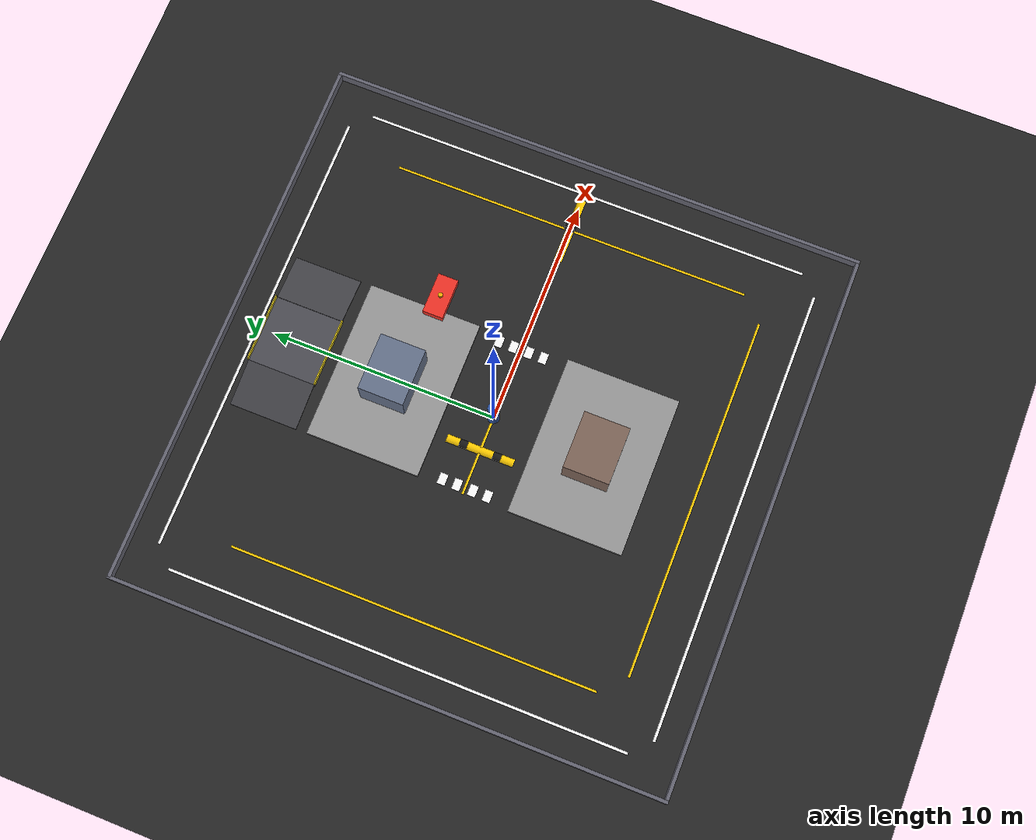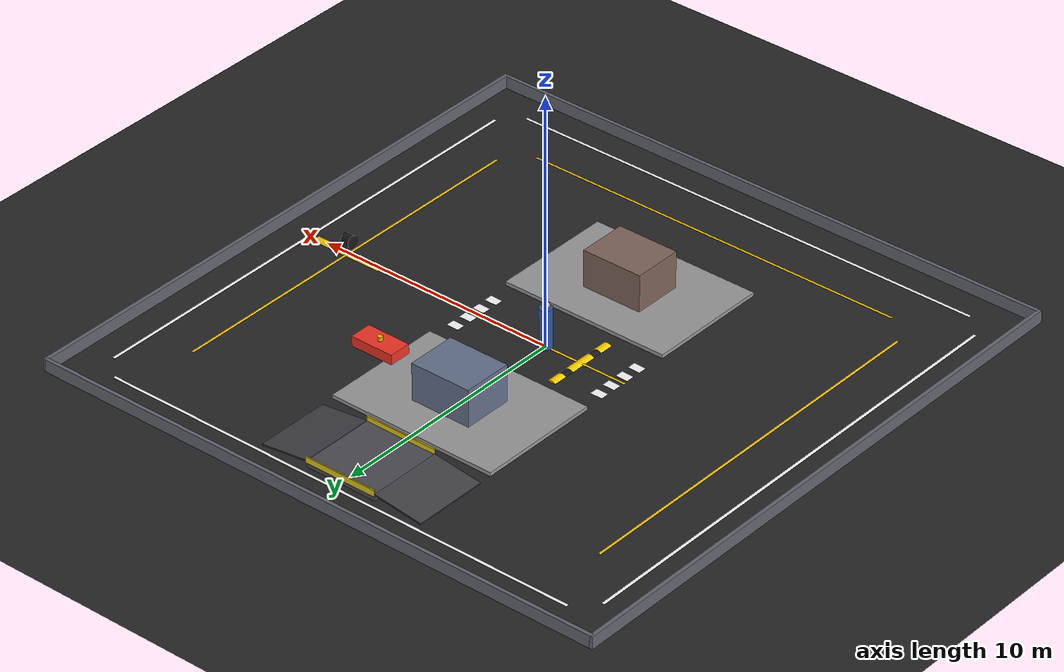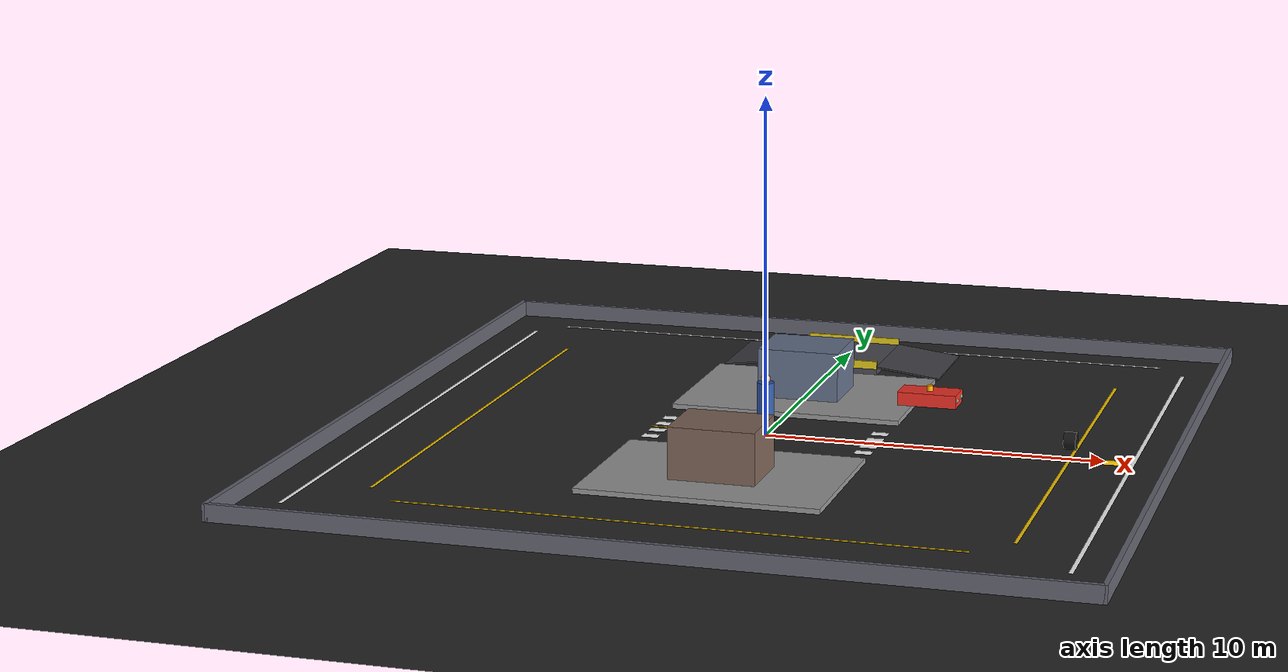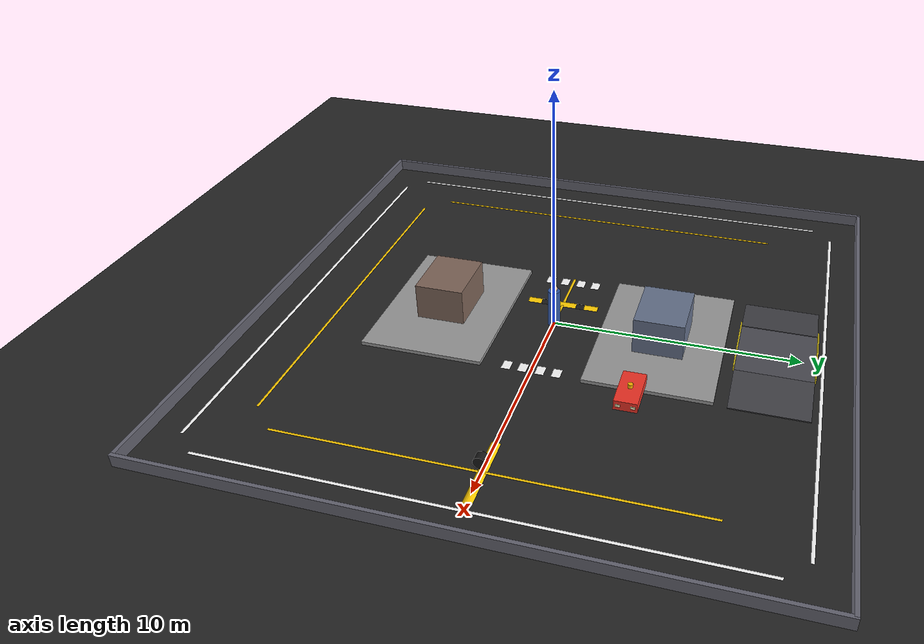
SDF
<?xml version="1.0" ?>
<sdf version="1.9">
  <world name="rl_arena">

    <!-- 1. Physics Engine Settings (ODE, 1ms step size, 1000 Hz)   -->
    <physics name="default_physics" type="ode">
      <max_step_size>0.001</max_step_size>
      <real_time_factor>1.0</real_time_factor>
      <real_time_update_rate>1000</real_time_update_rate>
    </physics>
    <gravity>0 0 -9.8</gravity>

    <!-- Essential Gazebo Sim Systems -->
    <plugin
      filename="gz-sim-physics-system"
      name="gz::sim::systems::Physics">
    </plugin>
    <plugin
      filename="gz-sim-user-commands-system"
      name="gz::sim::systems::UserCommands">
    </plugin>
    <plugin
      filename="gz-sim-scene-broadcaster-system"
      name="gz::sim::systems::SceneBroadcaster">
    </plugin>
    <plugin
      filename="gz-sim-contact-system"
      name="gz::sim::systems::Contact">
    </plugin>

    <!-- Directional Sunlight -->
    <light type="directional" name="sun">
      <cast_shadows>true</cast_shadows>
      <pose>0 0 20 0 0 0</pose>
      <diffuse>0.9 0.9 0.9 1</diffuse>
      <specular>0.3 0.3 0.3 1</specular>
      <direction>-0.3 0.2 -0.9</direction>
    </light>

    <!-- 2. Dark Asphalt Ground Plane (34m x 34m)                   -->
    <model name="ground_plane">
      <static>true</static>
      <link name="link">
        <collision name="collision">
          <geometry>
            <plane>
              <normal>0 0 1</normal>
              <size>34 34</size>
            </plane>
          </geometry>
        </collision>
        <visual name="visual">
          <geometry>
            <plane>
              <normal>0 0 1</normal>
              <size>34 34</size>
            </plane>
          </geometry>
          <material>
            <ambient>0.15 0.15 0.15 1</ambient>
            <diffuse>0.15 0.15 0.15 1</diffuse>
            <specular>0.08 0.08 0.08 1</specular>
          </material>
        </visual>
      </link>
    </model>

    <!-- 3. Expanded Perimeter Boundary Walls (24m x 24m)           -->
    <!-- Spanning X: -12m to +12m, Y: -12m to +12m, Height: 0.5m    -->
    <!-- North Wall (+X: x = +12.0m) -->
    <model name="wall_north">
      <static>true</static>
      <pose>12.0 0 0.25 0 0 0</pose>
      <link name="link">
        <collision name="collision">
          <geometry><box><size>0.15 24.15 0.5</size></box></geometry>
        </collision>
        <visual name="visual">
          <geometry><box><size>0.15 24.15 0.5</size></box></geometry>
          <material>
            <ambient>0.25 0.25 0.28 1</ambient>
            <diffuse>0.4 0.4 0.45 1</diffuse>
          </material>
        </visual>
      </link>
    </model>

    <!-- South Wall (-X: x = -12.0m) -->
    <model name="wall_south">
      <static>true</static>
      <pose>-12.0 0 0.25 0 0 0</pose>
      <link name="link">
        <collision name="collision">
          <geometry><box><size>0.15 24.15 0.5</size></box></geometry>
        </collision>
        <visual name="visual">
          <geometry><box><size>0.15 24.15 0.5</size></box></geometry>
          <material>
            <ambient>0.25 0.25 0.28 1</ambient>
            <diffuse>0.4 0.4 0.45 1</diffuse>
          </material>
        </visual>
      </link>
    </model>

    <!-- East Wall (+Y: y = +12.0m) -->
    <model name="wall_east">
      <static>true</static>
      <pose>0 12.0 0.25 0 0 0</pose>
      <link name="link">
        <collision name="collision">
          <geometry><box><size>24.0 0.15 0.5</size></box></geometry>
        </collision>
        <visual name="visual">
          <geometry><box><size>24.0 0.15 0.5</size></box></geometry>
          <material>
            <ambient>0.25 0.25 0.28 1</ambient>
            <diffuse>0.4 0.4 0.45 1</diffuse>
          </material>
        </visual>
      </link>
    </model>

    <!-- West Wall (-Y: y = -12.0m) -->
    <model name="wall_west">
      <static>true</static>
      <pose>0 -12.0 0.25 0 0 0</pose>
      <link name="link">
        <collision name="collision">
          <geometry><box><size>24.0 0.15 0.5</size></box></geometry>
        </collision>
        <visual name="visual">
          <geometry><box><size>24.0 0.15 0.5</size></box></geometry>
          <material>
            <ambient>0.25 0.25 0.28 1</ambient>
            <diffuse>0.4 0.4 0.45 1</diffuse>
          </material>
        </visual>
      </link>
    </model>

    <!-- 4. Structured City Blocks (Raised Pedestrian Sidewalks)     -->
    <!-- Concrete Color: 0.6 0.6 0.6, Height: 0.15m (Z = 0.075m)    -->

    <!-- Block A (North Island): 7.0m (X) x 5.0m (Y) x 0.15m (Z) at (0, 4.5, 0.075) -->
    <model name="city_block_north">
      <static>true</static>
      <pose>0.0 4.5 0.075 0 0 0</pose>
      <link name="link">
        <collision name="collision">
          <geometry><box><size>7.0 5.0 0.15</size></box></geometry>
        </collision>
        <visual name="sidewalk_concrete">
          <geometry><box><size>7.0 5.0 0.15</size></box></geometry>
          <material>
            <ambient>0.6 0.6 0.6 1</ambient>
            <diffuse>0.6 0.6 0.6 1</diffuse>
            <specular>0.2 0.2 0.2 1</specular>
          </material>
        </visual>
        <!-- Island Urban Prop (Native Box Geometry) -->
        <visual name="island_kiosk">
          <pose>0 0 0.825 0 0 0</pose>
          <geometry><box><size>2.5 2.0 1.5</size></box></geometry>
          <material><ambient>0.3 0.35 0.4 1</ambient><diffuse>0.4 0.45 0.55 1</diffuse></material>
        </visual>
        <collision name="kiosk_collision">
          <pose>0 0 0.825 0 0 0</pose>
          <geometry><box><size>2.5 2.0 1.5</size></box></geometry>
        </collision>
      </link>
    </model>

    <!-- Block B (South Island): 7.0m (X) x 5.0m (Y) x 0.15m (Z) at (0, -4.5, 0.075) -->
    <model name="city_block_south">
      <static>true</static>
      <pose>0.0 -4.5 0.075 0 0 0</pose>
      <link name="link">
        <collision name="collision">
          <geometry><box><size>7.0 5.0 0.15</size></box></geometry>
        </collision>
        <visual name="sidewalk_concrete">
          <geometry><box><size>7.0 5.0 0.15</size></box></geometry>
          <material>
            <ambient>0.6 0.6 0.6 1</ambient>
            <diffuse>0.6 0.6 0.6 1</diffuse>
            <specular>0.2 0.2 0.2 1</specular>
          </material>
        </visual>
        <!-- Island Urban Prop (Native Box Geometry) -->
        <visual name="island_pavilion">
          <pose>0 0 0.825 0 0 0</pose>
          <geometry><box><size>2.5 2.0 1.5</size></box></geometry>
          <material><ambient>0.35 0.3 0.25 1</ambient><diffuse>0.5 0.4 0.35 1</diffuse></material>
        </visual>
        <collision name="pavilion_collision">
          <pose>0 0 0.825 0 0 0</pose>
          <geometry><box><size>2.5 2.0 1.5</size></box></geometry>
        </collision>
      </link>
    </model>

    <!-- 5. Roadway Markings: Drivable Lanes & Dual Intersection    -->

    <!-- Central East-West Cross Avenue Centerline (y = 0.0m) -->
    <model name="lane_yellow_central_cross">
      <static>true</static>
      <pose>0.0 0.0 0.001 0 0 0</pose>
      <link name="link">
        <visual name="visual">
          <geometry><box><size>7.0 0.1 0.002</size></box></geometry>
          <material><ambient>1 0.8 0 1</ambient><diffuse>1 0.8 0 1</diffuse></material>
        </visual>
      </link>
    </model>

    <!-- Outer Perimeter Centerlines (Yellow Dashes along Driving Path) -->
    <model name="lane_yellow_south_ring">
      <static>true</static>
      <pose>0.0 -9.0 0.001 0 0 0</pose>
      <link name="link">
        <visual name="visual">
          <geometry><box><size>16.0 0.1 0.002</size></box></geometry>
          <material><ambient>1 0.8 0 1</ambient><diffuse>1 0.8 0 1</diffuse></material>
        </visual>
      </link>
    </model>
    <model name="lane_yellow_east_ring">
      <static>true</static>
      <pose>9.0 0.0 0.001 0 0 0</pose>
      <link name="link">
        <visual name="visual">
          <geometry><box><size>0.1 16.0 0.002</size></box></geometry>
          <material><ambient>1 0.8 0 1</ambient><diffuse>1 0.8 0 1</diffuse></material>
        </visual>
      </link>
    </model>
    <model name="lane_yellow_west_ring">
      <static>true</static>
      <pose>-9.0 0.0 0.001 0 0 0</pose>
      <link name="link">
        <visual name="visual">
          <geometry><box><size>0.1 16.0 0.002</size></box></geometry>
          <material><ambient>1 0.8 0 1</ambient><diffuse>1 0.8 0 1</diffuse></material>
        </visual>
      </link>
    </model>

    <!-- Solid White Outer Boundary Lines (Ring Road Outer Curb) -->
    <model name="edge_white_south_outer">
      <static>true</static>
      <pose>0.0 -10.8 0.001 0 0 0</pose>
      <link name="link"><visual name="visual"><geometry><box><size>20.0 0.12 0.002</size></box></geometry><material><ambient>1 1 1 1</ambient><diffuse>1 1 1 1</diffuse></material></visual></link>
    </model>
    <model name="edge_white_north_outer">
      <static>true</static>
      <pose>0.0 10.8 0.001 0 0 0</pose>
      <link name="link"><visual name="visual"><geometry><box><size>20.0 0.12 0.002</size></box></geometry><material><ambient>1 1 1 1</ambient><diffuse>1 1 1 1</diffuse></material></visual></link>
    </model>
    <model name="edge_white_east_outer">
      <static>true</static>
      <pose>10.8 0.0 0.001 0 0 0</pose>
      <link name="link"><visual name="visual"><geometry><box><size>0.12 20.0 0.002</size></box></geometry><material><ambient>1 1 1 1</ambient><diffuse>1 1 1 1</diffuse></material></visual></link>
    </model>
    <model name="edge_white_west_outer">
      <static>true</static>
      <pose>-10.8 0.0 0.001 0 0 0</pose>
      <link name="link"><visual name="visual"><geometry><box><size>0.12 20.0 0.002</size></box></geometry><material><ambient>1 1 1 1</ambient><diffuse>1 1 1 1</diffuse></material></visual></link>
    </model>

    <!-- Crosswalk Zebra Stripes at Dual Intersection (-3.2m and +3.2m) -->
    <!-- West Crosswalk at x = -3.2m -->
    <model name="crosswalk_west_1"><static>true</static><pose>-3.2 -1.0 0.001 0 0 0</pose><link name="link"><visual name="visual"><geometry><box><size>0.5 0.35 0.002</size></box></geometry><material><ambient>1 1 1 1</ambient><diffuse>1 1 1 1</diffuse></material></visual></link></model>
    <model name="crosswalk_west_2"><static>true</static><pose>-3.2 -0.35 0.001 0 0 0</pose><link name="link"><visual name="visual"><geometry><box><size>0.5 0.35 0.002</size></box></geometry><material><ambient>1 1 1 1</ambient><diffuse>1 1 1 1</diffuse></material></visual></link></model>
    <model name="crosswalk_west_3"><static>true</static><pose>-3.2 0.35 0.001 0 0 0</pose><link name="link"><visual name="visual"><geometry><box><size>0.5 0.35 0.002</size></box></geometry><material><ambient>1 1 1 1</ambient><diffuse>1 1 1 1</diffuse></material></visual></link></model>
    <model name="crosswalk_west_4"><static>true</static><pose>-3.2 1.0 0.001 0 0 0</pose><link name="link"><visual name="visual"><geometry><box><size>0.5 0.35 0.002</size></box></geometry><material><ambient>1 1 1 1</ambient><diffuse>1 1 1 1</diffuse></material></visual></link></model>

    <!-- East Crosswalk at x = +3.2m -->
    <model name="crosswalk_east_1"><static>true</static><pose>3.2 -1.0 0.001 0 0 0</pose><link name="link"><visual name="visual"><geometry><box><size>0.5 0.35 0.002</size></box></geometry><material><ambient>1 1 1 1</ambient><diffuse>1 1 1 1</diffuse></material></visual></link></model>
    <model name="crosswalk_east_2"><static>true</static><pose>3.2 -0.35 0.001 0 0 0</pose><link name="link"><visual name="visual"><geometry><box><size>0.5 0.35 0.002</size></box></geometry><material><ambient>1 1 1 1</ambient><diffuse>1 1 1 1</diffuse></material></visual></link></model>
    <model name="crosswalk_east_3"><static>true</static><pose>3.2 0.35 0.001 0 0 0</pose><link name="link"><visual name="visual"><geometry><box><size>0.5 0.35 0.002</size></box></geometry><material><ambient>1 1 1 1</ambient><diffuse>1 1 1 1</diffuse></material></visual></link></model>
    <model name="crosswalk_east_4"><static>true</static><pose>3.2 1.0 0.001 0 0 0</pose><link name="link"><visual name="visual"><geometry><box><size>0.5 0.35 0.002</size></box></geometry><material><ambient>1 1 1 1</ambient><diffuse>1 1 1 1</diffuse></material></visual></link></model>

    <!-- 6. Dynamic Pedestrian 1: Continuous Figure-8 Loop          -->
    <!-- Static: false. Link: kinematic=true, gravity=false         -->
    <!-- Initial Z: (Cylinder_Height / 2) + 0.05m = 0.85m           -->
    <!-- Base hovers 0.05m above ground plane to prevent contact    -->
    <!-- Collision retained for TurtleBot LiDAR detection           -->
    <model name="dynamic_pedestrian_1">
      <static>false</static>
      <pose>0.0 0.0 0.8 0 0 0</pose>
      <link name="link">
        <kinematic>true</kinematic>
        <gravity>false</gravity>
        <collision name="collision">
          <geometry>
            <cylinder>
              <radius>0.25</radius>
              <length>1.6</length>
            </cylinder>
          </geometry>
        </collision>
        <visual name="torso_visual">
          <geometry>
            <cylinder>
              <radius>0.25</radius>
              <length>1.6</length>
            </cylinder>
          </geometry>
          <material>
            <ambient>0.15 0.25 0.45 1</ambient>
            <diffuse>0.2 0.35 0.65 1</diffuse>
          </material>
        </visual>
        <visual name="head_visual">
          <pose>0 0 0.9 0 0 0</pose>
          <geometry>
            <sphere><radius>0.14</radius></sphere>
          </geometry>
          <material>
            <ambient>0.85 0.65 0.5 1</ambient>
            <diffuse>0.9 0.7 0.55 1</diffuse>
          </material>
        </visual>
      </link>
      <plugin filename="gz-sim-trajectory-follower-system" name="gz::sim::systems::TrajectoryFollower">
        <link_name>link</link_name>
        <loop>true</loop>
        <waypoints>
          <waypoint>0.0 -2.5</waypoint>
          <waypoint>0.0 2.5</waypoint>
        </waypoints>
        <force>30</force>
        <torque>20</torque>
        <range_tolerance>0.2</range_tolerance>
      </plugin>
    </model>

    <!-- 7. Model 2: Automated Patrol / Vehicle Dummy               -->
    <!-- Static: false. Link: kinematic=true, gravity=false         -->
    <!-- Initial Z: (Car_Height / 2) + 0.05m = (0.5/2)+0.05 = 0.30m -->
    <!-- Base hovers 0.05m above ground plane to prevent contact    -->
    <!-- Collision retained for TurtleBot LiDAR detection           -->
    <model name="automated_patrol_vehicle">
      <static>false</static>
      <pose>4.0 4.0 0.4 0 0 0</pose>
      <link name="link">
        <kinematic>true</kinematic>
        <gravity>false</gravity>
        <collision name="collision">
          <geometry><box><size>1.8 0.9 0.5</size></box></geometry>
        </collision>
        <visual name="chassis">
          <geometry><box><size>1.8 0.9 0.4</size></box></geometry>
          <material>
            <ambient>0.85 0.15 0.1 1</ambient>
            <diffuse>0.95 0.2 0.15 1</diffuse>
          </material>
        </visual>
        <!-- Amber Patrol Warning Flasher on Roof -->
        <visual name="flasher">
          <pose>0 0 0.28 0 0 0</pose>
          <geometry><cylinder><radius>0.1</radius><length>0.16</length></cylinder></geometry>
          <material><ambient>1 0.7 0 1</ambient><diffuse>1 0.7 0 1</diffuse></material>
        </visual>
        <!-- Headlights -->
        <visual name="headlight_left">
          <pose>0.91 0.28 0.0 0 0 0</pose>
          <geometry><box><size>0.02 0.18 0.1</size></box></geometry>
          <material><ambient>1 1 0.8 1</ambient><diffuse>1 1 0.8 1</diffuse></material>
        </visual>
        <visual name="headlight_right">
          <pose>0.91 -0.28 0.0 0 0 0</pose>
          <geometry><box><size>0.02 0.18 0.1</size></box></geometry>
          <material><ambient>1 1 0.8 1</ambient><diffuse>1 1 0.8 1</diffuse></material>
        </visual>
      </link>
      <plugin filename="gz-sim-trajectory-follower-system" name="gz::sim::systems::TrajectoryFollower">
        <link_name>link</link_name>
        <loop>true</loop>
        <waypoints>
          <waypoint>4.0 4.0</waypoint>
          <waypoint>-4.0 4.0</waypoint>
          <waypoint>-4.0 -4.0</waypoint>
          <waypoint>4.0 -4.0</waypoint>
        </waypoints>
        <force>50</force>
        <torque>30</torque>
        <range_tolerance>0.4</range_tolerance>
      </plugin>
    </model>

    <!-- 8. Structured Elevation & Speed Challenges                 -->

    <!-- Speed Bump 1: Across Central Cross Avenue at x = -1.5m, y = 0.0m -->
    <model name="speed_bump_central_cross">
      <static>true</static>
      <!-- Submerged cylinder producing clean 0.04m arched profile across 3.0m lane -->
      <pose>-1.5 0.0 -0.21 1.5708 0 0</pose>
      <link name="link">
        <collision name="collision">
          <geometry><cylinder><radius>0.25</radius><length>3.0</length></cylinder></geometry>
        </collision>
        <visual name="yellow_base">
          <geometry><cylinder><radius>0.25</radius><length>3.0</length></cylinder></geometry>
          <material>
            <ambient>1.0 0.8 0.0 1</ambient>
            <diffuse>1.0 0.8 0.0 1</diffuse>
            <specular>0.3 0.3 0.0 1</specular>
          </material>
        </visual>
        <!-- Black Contrast Stripe Accents -->
        <visual name="black_accent_1">
          <pose>0 0 -0.75 0 0 0</pose>
          <geometry><cylinder><radius>0.251</radius><length>0.35</length></cylinder></geometry>
          <material><ambient>0.08 0.08 0.08 1</ambient><diffuse>0.1 0.1 0.1 1</diffuse></material>
        </visual>
        <visual name="black_accent_2">
          <pose>0 0 0.75 0 0 0</pose>
          <geometry><cylinder><radius>0.251</radius><length>0.35</length></cylinder></geometry>
          <material><ambient>0.08 0.08 0.08 1</ambient><diffuse>0.1 0.1 0.1 1</diffuse></material>
        </visual>
      </link>
    </model>

    <!-- Speed Bump 2: Across East Ring Road at x = 9.0m, y = 0.0m -->
    <model name="speed_bump_east_straight">
      <static>true</static>
      <pose>9.0 0.0 -0.21 0 1.5708 0</pose>
      <link name="link">
        <collision name="collision">
          <geometry><cylinder><radius>0.25</radius><length>3.0</length></cylinder></geometry>
        </collision>
        <visual name="yellow_base">
          <geometry><cylinder><radius>0.25</radius><length>3.0</length></cylinder></geometry>
          <material>
            <ambient>1.0 0.8 0.0 1</ambient>
            <diffuse>1.0 0.8 0.0 1</diffuse>
            <specular>0.3 0.3 0.0 1</specular>
          </material>
        </visual>
        <!-- Black Contrast Stripe Accents -->
        <visual name="black_accent_1">
          <pose>-0.75 0 0 0 0 0</pose>
          <geometry><cylinder><radius>0.251</radius><length>0.35</length></cylinder></geometry>
          <material><ambient>0.08 0.08 0.08 1</ambient><diffuse>0.1 0.1 0.1 1</diffuse></material>
        </visual>
        <visual name="black_accent_2">
          <pose>0.75 0 0 0 0 0</pose>
          <geometry><cylinder><radius>0.251</radius><length>0.35</length></cylinder></geometry>
          <material><ambient>0.08 0.08 0.08 1</ambient><diffuse>0.1 0.1 0.1 1</diffuse></material>
        </visual>
      </link>
    </model>

    <!-- Flyover / Bridge (North Outer Ring Road at y = 9.0m) -->
    <!-- Incline Ramp: Spans x = -3.5m to -1.5m, Rise 0.25m (~7 deg, 0.124 rad) -->
    <model name="flyover_incline">
      <static>true</static>
      <pose>-2.5 9.0 0.125 0 -0.124 0</pose>
      <link name="link">
        <collision name="collision">
          <geometry><box><size>2.02 3.0 0.05</size></box></geometry>
        </collision>
        <visual name="visual">
          <geometry><box><size>2.02 3.0 0.05</size></box></geometry>
          <material>
            <ambient>0.2 0.2 0.22 1</ambient>
            <diffuse>0.26 0.26 0.28 1</diffuse>
          </material>
        </visual>
      </link>
    </model>

    <!-- Elevated Straight Span: Spans x = -1.5m to +1.5m at height z = 0.25m -->
    <model name="flyover_straight_span">
      <static>true</static>
      <pose>0.0 9.0 0.125 0 0 0</pose>
      <link name="link">
        <collision name="collision">
          <geometry><box><size>3.0 3.0 0.25</size></box></geometry>
        </collision>
        <visual name="deck_visual">
          <geometry><box><size>3.0 3.0 0.25</size></box></geometry>
          <material>
            <ambient>0.22 0.22 0.25 1</ambient>
            <diffuse>0.3 0.3 0.33 1</diffuse>
          </material>
        </visual>
        <!-- Flyover Outer Guard Rails -->
        <visual name="rail_north">
          <pose>0 1.52 0.2 0 0 0</pose>
          <geometry><box><size>3.0 0.05 0.25</size></box></geometry>
          <material><ambient>0.9 0.8 0.1 1</ambient><diffuse>0.9 0.8 0.1 1</diffuse></material>
        </visual>
        <visual name="rail_south">
          <pose>0 -1.52 0.2 0 0 0</pose>
          <geometry><box><size>3.0 0.05 0.25</size></box></geometry>
          <material><ambient>0.9 0.8 0.1 1</ambient><diffuse>0.9 0.8 0.1 1</diffuse></material>
        </visual>
      </link>
    </model>

    <!-- Descent Ramp: Spans x = +1.5m to +3.5m, Slopes down from z = 0.25m to 0m -->
    <model name="flyover_descent">
      <static>true</static>
      <pose>2.5 9.0 0.125 0 0.124 0</pose>
      <link name="link">
        <collision name="collision">
          <geometry><box><size>2.02 3.0 0.05</size></box></geometry>
        </collision>
        <visual name="visual">
          <geometry><box><size>2.02 3.0 0.05</size></box></geometry>
          <material>
            <ambient>0.2 0.2 0.22 1</ambient>
            <diffuse>0.26 0.26 0.28 1</diffuse>
          </material>
        </visual>
      </link>
    </model>

    <!-- 9. Safe Robot Starting Spawn Area                          -->
    <!-- Position: (-9.0, -9.0, 0.05)                               -->
    <!-- Facing: North (+Y) along the wide outer driving lane       -->
    <!-- Fully cleared, legal driving corridor around entire grid   -->

  </world>
</sdf>
